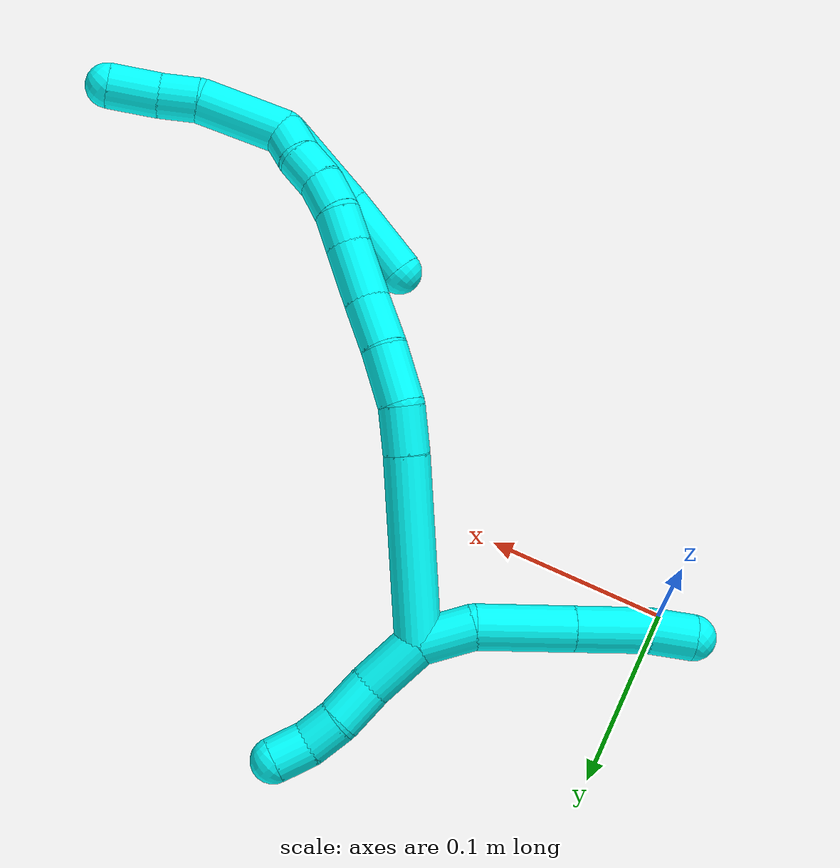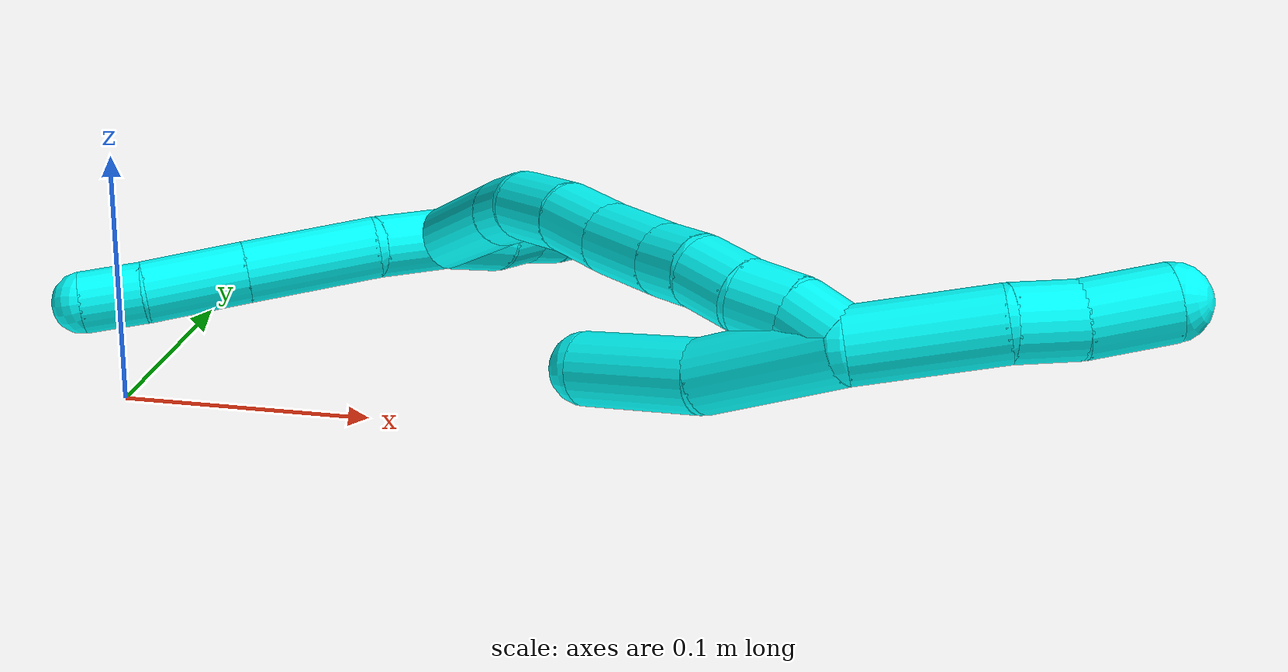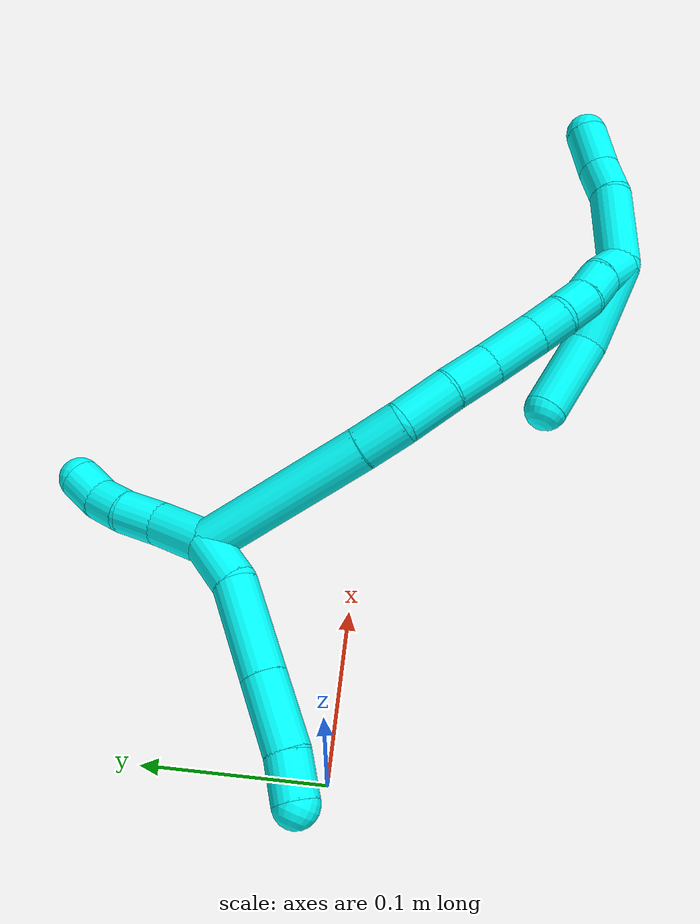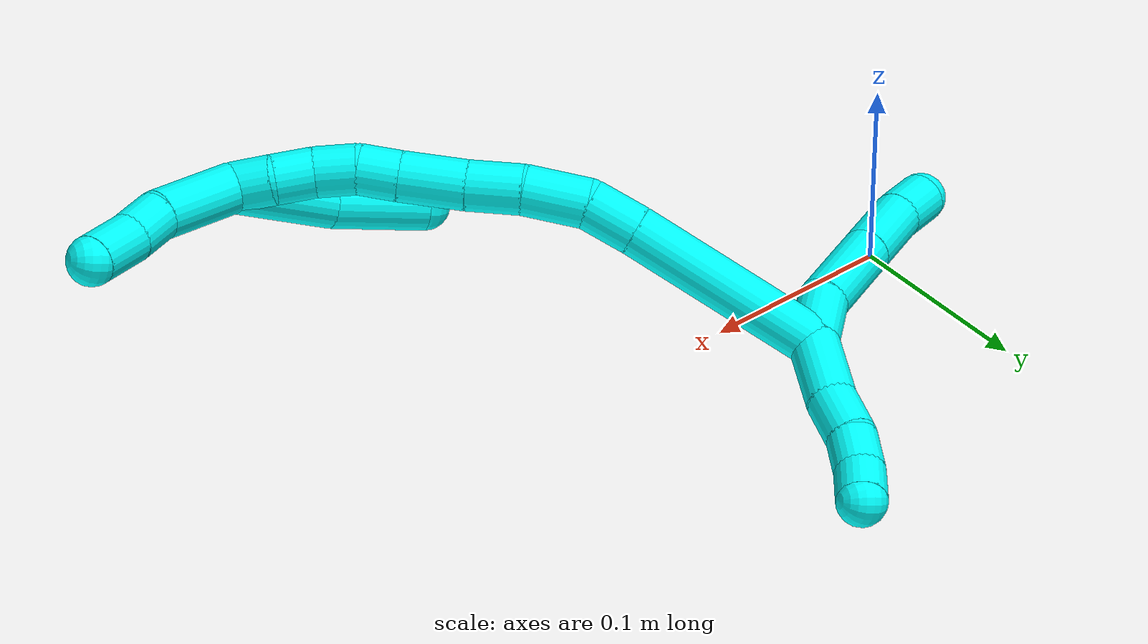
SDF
<sdf version="1.7">
 <world name="default">
  <model name="3">
   <static>0</static>
   <link name="3">
    <collision name="collision-cylinder-e_1_2_8">
     <pose>-0.011169 -0.007298 -0.007728 2.38482 -0.810144 -1.64638</pose>
     <geometry><cylinder><radius>0.0125</radius><length>0.030836</length></cylinder></geometry>
     <surface>
      <friction><ode><mu>1.16</mu><mu2>1.16</mu2><slip1>0</slip1><slip2>0</slip2></ode></friction>
      <contact><ode><kp>1e+06</kp><kd>1</kd><max_vel>0</max_vel><min_depth>0.001</min_depth></ode></contact>
     </surface>
    </collision>
    <visual name="visual-cylinder-e_1_2_8">
     <pose>-0.011169 -0.007298 -0.007728 2.38482 -0.810144 -1.64638</pose>
     <geometry><cylinder><radius>0.0125</radius><length>0.030836</length></cylinder></geometry>
     <material><ambient>0.003922 1 0.996078 1</ambient></material>
    </visual>
    <collision name="collision-cylinder-e_2_8_9">
     <pose>-0.036488 -0.025867 -0.035149 2.62173 -0.557626 -1.64436</pose>
     <geometry><cylinder><radius>0.0125</radius><length>0.053483</length></cylinder></geometry>
     <surface>
      <friction><ode><mu>1.16</mu><mu2>1.16</mu2><slip1>0</slip1><slip2>0</slip2></ode></friction>
      <contact><ode><kp>1e+06</kp><kd>1</kd><max_vel>0</max_vel><min_depth>0.001</min_depth></ode></contact>
     </surface>
    </collision>
    <visual name="visual-cylinder-e_2_8_9">
     <pose>-0.036488 -0.025867 -0.035149 2.62173 -0.557626 -1.64436</pose>
     <geometry><cylinder><radius>0.0125</radius><length>0.053483</length></cylinder></geometry>
     <material><ambient>0.003922 1 0.996078 1</ambient></material>
    </visual>
    <collision name="collision-cylinder-e_3_9_10">
     <pose>-0.061374 -0.045875 -0.069878 2.61526 -0.55306 -1.62279</pose>
     <geometry><cylinder><radius>0.0125</radius><length>0.040873</length></cylinder></geometry>
     <surface>
      <friction><ode><mu>1.16</mu><mu2>1.16</mu2><slip1>0</slip1><slip2>0</slip2></ode></friction>
      <contact><ode><kp>1e+06</kp><kd>1</kd><max_vel>0</max_vel><min_depth>0.001</min_depth></ode></contact>
     </surface>
    </collision>
    <visual name="visual-cylinder-e_3_9_10">
     <pose>-0.061374 -0.045875 -0.069878 2.61526 -0.55306 -1.62279</pose>
     <geometry><cylinder><radius>0.0125</radius><length>0.040873</length></cylinder></geometry>
     <material><ambient>0.003922 1 0.996078 1</ambient></material>
    </visual>
    <collision name="collision-cylinder-e_4_10_6">
     <pose>-0.077818 -0.058824 -0.095088 2.74903 -0.47828 -1.77327</pose>
     <geometry><cylinder><radius>0.0125</radius><length>0.024808</length></cylinder></geometry>
     <surface>
      <friction><ode><mu>1.16</mu><mu2>1.16</mu2><slip1>0</slip1><slip2>0</slip2></ode></friction>
      <contact><ode><kp>1e+06</kp><kd>1</kd><max_vel>0</max_vel><min_depth>0.001</min_depth></ode></contact>
     </surface>
    </collision>
    <visual name="visual-cylinder-e_4_10_6">
     <pose>-0.077818 -0.058824 -0.095088 2.74903 -0.47828 -1.77327</pose>
     <geometry><cylinder><radius>0.0125</radius><length>0.024808</length></cylinder></geometry>
     <material><ambient>0.003922 1 0.996078 1</ambient></material>
    </visual>
    <collision name="collision-cylinder-e_1_2_11">
     <pose>0.015317 0.007769 0.000895 -1.45616 1.09871 -0.999183</pose>
     <geometry><cylinder><radius>0.0125</radius><length>0.034396</length></cylinder></geometry>
     <surface>
      <friction><ode><mu>1.16</mu><mu2>1.16</mu2><slip1>0</slip1><slip2>0</slip2></ode></friction>
      <contact><ode><kp>1e+06</kp><kd>1</kd><max_vel>0</max_vel><min_depth>0.001</min_depth></ode></contact>
     </surface>
    </collision>
    <visual name="visual-cylinder-e_1_2_11">
     <pose>0.015317 0.007769 0.000895 -1.45616 1.09871 -0.999183</pose>
     <geometry><cylinder><radius>0.0125</radius><length>0.034396</length></cylinder></geometry>
     <material><ambient>0.003922 1 0.996078 1</ambient></material>
    </visual>
    <collision name="collision-cylinder-e_2_11_12">
     <pose>0.040538 0.022956 0.00156 -1.60164 0.927809 -0.952725</pose>
     <geometry><cylinder><radius>0.0125</radius><length>0.024751</length></cylinder></geometry>
     <surface>
      <friction><ode><mu>1.16</mu><mu2>1.16</mu2><slip1>0</slip1><slip2>0</slip2></ode></friction>
      <contact><ode><kp>1e+06</kp><kd>1</kd><max_vel>0</max_vel><min_depth>0.001</min_depth></ode></contact>
     </surface>
    </collision>
    <visual name="visual-cylinder-e_2_11_12">
     <pose>0.040538 0.022956 0.00156 -1.60164 0.927809 -0.952725</pose>
     <geometry><cylinder><radius>0.0125</radius><length>0.024751</length></cylinder></geometry>
     <material><ambient>0.003922 1 0.996078 1</ambient></material>
    </visual>
    <collision name="collision-cylinder-e_3_12_13">
     <pose>0.059316 0.035037 0.002615 -1.30235 1.07162 -0.849814</pose>
     <geometry><cylinder><radius>0.0125</radius><length>0.020215</length></cylinder></geometry>
     <surface>
      <friction><ode><mu>1.16</mu><mu2>1.16</mu2><slip1>0</slip1><slip2>0</slip2></ode></friction>
      <contact><ode><kp>1e+06</kp><kd>1</kd><max_vel>0</max_vel><min_depth>0.001</min_depth></ode></contact>
     </surface>
    </collision>
    <visual name="visual-cylinder-e_3_12_13">
     <pose>0.059316 0.035037 0.002615 -1.30235 1.07162 -0.849814</pose>
     <geometry><cylinder><radius>0.0125</radius><length>0.020215</length></cylinder></geometry>
     <material><ambient>0.003922 1 0.996078 1</ambient></material>
    </visual>
    <collision name="collision-cylinder-e_4_13_5">
     <pose>0.075848 0.045604 0.007507 -1.02191 0.836101 -0.48816</pose>
     <geometry><cylinder><radius>0.0125</radius><length>0.020638</length></cylinder></geometry>
     <surface>
      <friction><ode><mu>1.16</mu><mu2>1.16</mu2><slip1>0</slip1><slip2>0</slip2></ode></friction>
      <contact><ode><kp>1e+06</kp><kd>1</kd><max_vel>0</max_vel><min_depth>0.001</min_depth></ode></contact>
     </surface>
    </collision>
    <visual name="visual-cylinder-e_4_13_5">
     <pose>0.075848 0.045604 0.007507 -1.02191 0.836101 -0.48816</pose>
     <geometry><cylinder><radius>0.0125</radius><length>0.020638</length></cylinder></geometry>
     <material><ambient>0.003922 1 0.996078 1</ambient></material>
    </visual>
    <collision name="collision-cylinder-e_1_2_14">
     <pose>-0.029683 -0.015696 0.037241 0.398878 -0.633488 -0.132312</pose>
     <geometry><cylinder><radius>0.0125</radius><length>0.100287</length></cylinder></geometry>
     <surface>
      <friction><ode><mu>1.16</mu><mu2>1.16</mu2><slip1>0</slip1><slip2>0</slip2></ode></friction>
      <contact><ode><kp>1e+06</kp><kd>1</kd><max_vel>0</max_vel><min_depth>0.001</min_depth></ode></contact>
     </surface>
    </collision>
    <visual name="visual-cylinder-e_1_2_14">
     <pose>-0.029683 -0.015696 0.037241 0.398878 -0.633488 -0.132312</pose>
     <geometry><cylinder><radius>0.0125</radius><length>0.100287</length></cylinder></geometry>
     <material><ambient>0.003922 1 0.996078 1</ambient></material>
    </visual>
    <collision name="collision-cylinder-e_2_14_15">
     <pose>-0.066567 -0.035515 0.084528 0.38947 -0.585611 -0.118781</pose>
     <geometry><cylinder><radius>0.0125</radius><length>0.026057</length></cylinder></geometry>
     <surface>
      <friction><ode><mu>1.16</mu><mu2>1.16</mu2><slip1>0</slip1><slip2>0</slip2></ode></friction>
      <contact><ode><kp>1e+06</kp><kd>1</kd><max_vel>0</max_vel><min_depth>0.001</min_depth></ode></contact>
     </surface>
    </collision>
    <visual name="visual-cylinder-e_2_14_15">
     <pose>-0.066567 -0.035515 0.084528 0.38947 -0.585611 -0.118781</pose>
     <geometry><cylinder><radius>0.0125</radius><length>0.026057</length></cylinder></geometry>
     <material><ambient>0.003922 1 0.996078 1</ambient></material>
    </visual>
    <collision name="collision-cylinder-e_3_15_16">
     <pose>-0.078351 -0.046536 0.108148 0.470153 -0.292359 -0.070495</pose>
     <geometry><cylinder><radius>0.0125</radius><length>0.031805</length></cylinder></geometry>
     <surface>
      <friction><ode><mu>1.16</mu><mu2>1.16</mu2><slip1>0</slip1><slip2>0</slip2></ode></friction>
      <contact><ode><kp>1e+06</kp><kd>1</kd><max_vel>0</max_vel><min_depth>0.001</min_depth></ode></contact>
     </surface>
    </collision>
    <visual name="visual-cylinder-e_3_15_16">
     <pose>-0.078351 -0.046536 0.108148 0.470153 -0.292359 -0.070495</pose>
     <geometry><cylinder><radius>0.0125</radius><length>0.031805</length></cylinder></geometry>
     <material><ambient>0.003922 1 0.996078 1</ambient></material>
    </visual>
    <collision name="collision-cylinder-e_4_16_17">
     <pose>-0.085221 -0.060485 0.133222 0.549986 -0.167894 -0.047473</pose>
     <geometry><cylinder><radius>0.0125</radius><length>0.02736</length></cylinder></geometry>
     <surface>
      <friction><ode><mu>1.16</mu><mu2>1.16</mu2><slip1>0</slip1><slip2>0</slip2></ode></friction>
      <contact><ode><kp>1e+06</kp><kd>1</kd><max_vel>0</max_vel><min_depth>0.001</min_depth></ode></contact>
     </surface>
    </collision>
    <visual name="visual-cylinder-e_4_16_17">
     <pose>-0.085221 -0.060485 0.133222 0.549986 -0.167894 -0.047473</pose>
     <geometry><cylinder><radius>0.0125</radius><length>0.02736</length></cylinder></geometry>
     <material><ambient>0.003922 1 0.996078 1</ambient></material>
    </visual>
    <collision name="collision-cylinder-e_5_17_18">
     <pose>-0.091094 -0.075351 0.158654 0.511275 -0.220906 -0.057955</pose>
     <geometry><cylinder><radius>0.0125</radius><length>0.032747</length></cylinder></geometry>
     <surface>
      <friction><ode><mu>1.16</mu><mu2>1.16</mu2><slip1>0</slip1><slip2>0</slip2></ode></friction>
      <contact><ode><kp>1e+06</kp><kd>1</kd><max_vel>0</max_vel><min_depth>0.001</min_depth></ode></contact>
     </surface>
    </collision>
    <visual name="visual-cylinder-e_5_17_18">
     <pose>-0.091094 -0.075351 0.158654 0.511275 -0.220906 -0.057955</pose>
     <geometry><cylinder><radius>0.0125</radius><length>0.032747</length></cylinder></geometry>
     <material><ambient>0.003922 1 0.996078 1</ambient></material>
    </visual>
    <collision name="collision-cylinder-e_6_18_19">
     <pose>-0.09719 -0.087683 0.181324 0.476925 -0.249641 -0.060983</pose>
     <geometry><cylinder><radius>0.0125</radius><length>0.0203</length></cylinder></geometry>
     <surface>
      <friction><ode><mu>1.16</mu><mu2>1.16</mu2><slip1>0</slip1><slip2>0</slip2></ode></friction>
      <contact><ode><kp>1e+06</kp><kd>1</kd><max_vel>0</max_vel><min_depth>0.001</min_depth></ode></contact>
     </surface>
    </collision>
    <visual name="visual-cylinder-e_6_18_19">
     <pose>-0.09719 -0.087683 0.181324 0.476925 -0.249641 -0.060983</pose>
     <geometry><cylinder><radius>0.0125</radius><length>0.0203</length></cylinder></geometry>
     <material><ambient>0.003922 1 0.996078 1</ambient></material>
    </visual>
    <collision name="collision-cylinder-e_7_19_20">
     <pose>-0.099864 -0.097707 0.199088 0.547999 -0.015765 -0.004431</pose>
     <geometry><cylinder><radius>0.0125</radius><length>0.021151</length></cylinder></geometry>
     <surface>
      <friction><ode><mu>1.16</mu><mu2>1.16</mu2><slip1>0</slip1><slip2>0</slip2></ode></friction>
      <contact><ode><kp>1e+06</kp><kd>1</kd><max_vel>0</max_vel><min_depth>0.001</min_depth></ode></contact>
     </surface>
    </collision>
    <visual name="visual-cylinder-e_7_19_20">
     <pose>-0.099864 -0.097707 0.199088 0.547999 -0.015765 -0.004431</pose>
     <geometry><cylinder><radius>0.0125</radius><length>0.021151</length></cylinder></geometry>
     <material><ambient>0.003922 1 0.996078 1</ambient></material>
    </visual>
    <collision name="collision-cylinder-e_8_20_21">
     <pose>-0.098793 -0.106905 0.217359 0.379748 0.123661 0.023796</pose>
     <geometry><cylinder><radius>0.0125</radius><length>0.020062</length></cylinder></geometry>
     <surface>
      <friction><ode><mu>1.16</mu><mu2>1.16</mu2><slip1>0</slip1><slip2>0</slip2></ode></friction>
      <contact><ode><kp>1e+06</kp><kd>1</kd><max_vel>0</max_vel><min_depth>0.001</min_depth></ode></contact>
     </surface>
    </collision>
    <visual name="visual-cylinder-e_8_20_21">
     <pose>-0.098793 -0.106905 0.217359 0.379748 0.123661 0.023796</pose>
     <geometry><cylinder><radius>0.0125</radius><length>0.020062</length></cylinder></geometry>
     <material><ambient>0.003922 1 0.996078 1</ambient></material>
    </visual>
    <collision name="collision-cylinder-e_9_21_1">
     <pose>-0.096652 -0.1164 0.234838 0.614058 0.08947 0.028384</pose>
     <geometry><cylinder><radius>0.0125</radius><length>0.02023</length></cylinder></geometry>
     <surface>
      <friction><ode><mu>1.16</mu><mu2>1.16</mu2><slip1>0</slip1><slip2>0</slip2></ode></friction>
      <contact><ode><kp>1e+06</kp><kd>1</kd><max_vel>0</max_vel><min_depth>0.001</min_depth></ode></contact>
     </surface>
    </collision>
    <visual name="visual-cylinder-e_9_21_1">
     <pose>-0.096652 -0.1164 0.234838 0.614058 0.08947 0.028384</pose>
     <geometry><cylinder><radius>0.0125</radius><length>0.02023</length></cylinder></geometry>
     <material><ambient>0.003922 1 0.996078 1</ambient></material>
    </visual>
    <collision name="collision-cylinder-e_1_1_22">
     <pose>-0.087569 -0.116331 0.265523 -0.255893 0.338889 -0.044013</pose>
     <geometry><cylinder><radius>0.0125</radius><length>0.049212</length></cylinder></geometry>
     <surface>
      <friction><ode><mu>1.16</mu><mu2>1.16</mu2><slip1>0</slip1><slip2>0</slip2></ode></friction>
      <contact><ode><kp>1e+06</kp><kd>1</kd><max_vel>0</max_vel><min_depth>0.001</min_depth></ode></contact>
     </surface>
    </collision>
    <visual name="visual-cylinder-e_1_1_22">
     <pose>-0.087569 -0.116331 0.265523 -0.255893 0.338889 -0.044013</pose>
     <geometry><cylinder><radius>0.0125</radius><length>0.049212</length></cylinder></geometry>
     <material><ambient>0.003922 1 0.996078 1</ambient></material>
    </visual>
    <collision name="collision-cylinder-e_2_22_23">
     <pose>-0.07334 -0.107569 0.29671 -0.319325 0.5815 -0.096297</pose>
     <geometry><cylinder><radius>0.0125</radius><length>0.022024</length></cylinder></geometry>
     <surface>
      <friction><ode><mu>1.16</mu><mu2>1.16</mu2><slip1>0</slip1><slip2>0</slip2></ode></friction>
      <contact><ode><kp>1e+06</kp><kd>1</kd><max_vel>0</max_vel><min_depth>0.001</min_depth></ode></contact>
     </surface>
    </collision>
    <visual name="visual-cylinder-e_2_22_23">
     <pose>-0.07334 -0.107569 0.29671 -0.319325 0.5815 -0.096297</pose>
     <geometry><cylinder><radius>0.0125</radius><length>0.022024</length></cylinder></geometry>
     <material><ambient>0.003922 1 0.996078 1</ambient></material>
    </visual>
    <collision name="collision-cylinder-e_3_23_4">
     <pose>-0.060975 -0.099589 0.317323 -0.404973 0.454694 -0.09492</pose>
     <geometry><cylinder><radius>0.0125</radius><length>0.028765</length></cylinder></geometry>
     <surface>
      <friction><ode><mu>1.16</mu><mu2>1.16</mu2><slip1>0</slip1><slip2>0</slip2></ode></friction>
      <contact><ode><kp>1e+06</kp><kd>1</kd><max_vel>0</max_vel><min_depth>0.001</min_depth></ode></contact>
     </surface>
    </collision>
    <visual name="visual-cylinder-e_3_23_4">
     <pose>-0.060975 -0.099589 0.317323 -0.404973 0.454694 -0.09492</pose>
     <geometry><cylinder><radius>0.0125</radius><length>0.028765</length></cylinder></geometry>
     <material><ambient>0.003922 1 0.996078 1</ambient></material>
    </visual>
    <collision name="collision-cylinder-e_1_1_24">
     <pose>-0.092546 -0.123476 0.216791 3.09327 0.121107 2.38304</pose>
     <geometry><cylinder><radius>0.0125</radius><length>0.053013</length></cylinder></geometry>
     <surface>
      <friction><ode><mu>1.16</mu><mu2>1.16</mu2><slip1>0</slip1><slip2>0</slip2></ode></friction>
      <contact><ode><kp>1e+06</kp><kd>1</kd><max_vel>0</max_vel><min_depth>0.001</min_depth></ode></contact>
     </surface>
    </collision>
    <visual name="visual-cylinder-e_1_1_24">
     <pose>-0.092546 -0.123476 0.216791 3.09327 0.121107 2.38304</pose>
     <geometry><cylinder><radius>0.0125</radius><length>0.053013</length></cylinder></geometry>
     <material><ambient>0.003922 1 0.996078 1</ambient></material>
    </visual>
    <collision name="collision-cylinder-e_2_24_3">
     <pose>-0.088302 -0.120741 0.167383 -2.97008 0.044359 -0.505076</pose>
     <geometry><cylinder><radius>0.0125</radius><length>0.046987</length></cylinder></geometry>
     <surface>
      <friction><ode><mu>1.16</mu><mu2>1.16</mu2><slip1>0</slip1><slip2>0</slip2></ode></friction>
      <contact><ode><kp>1e+06</kp><kd>1</kd><max_vel>0</max_vel><min_depth>0.001</min_depth></ode></contact>
     </surface>
    </collision>
    <visual name="visual-cylinder-e_2_24_3">
     <pose>-0.088302 -0.120741 0.167383 -2.97008 0.044359 -0.505076</pose>
     <geometry><cylinder><radius>0.0125</radius><length>0.046987</length></cylinder></geometry>
     <material><ambient>0.003922 1 0.996078 1</ambient></material>
    </visual>
    <collision name="collision-sphere-3">
     <pose>-0.08726 -0.116736 0.144257 0 -0 0</pose>
     <geometry><sphere><radius>0.0125</radius></sphere></geometry>
     <surface>
      <friction><ode><mu>1.16</mu><mu2>1.16</mu2><slip1>0</slip1><slip2>0</slip2></ode></friction>
      <contact><ode><kp>1e+06</kp><kd>1</kd><max_vel>0</max_vel><min_depth>0.001</min_depth></ode></contact>
     </surface>
    </collision>
    <visual name="visual-sphere-3">
     <pose>-0.08726 -0.116736 0.144257 0 -0 0</pose>
     <geometry><sphere><radius>0.0125</radius></sphere></geometry>
     <material><ambient>0.003922 1 0.996078 1</ambient></material>
    </visual>
    <collision name="collision-sphere-24">
     <pose>-0.089344 -0.124747 0.190509 0 -0 0</pose>
     <geometry><sphere><radius>0.0125</radius></sphere></geometry>
     <surface>
      <friction><ode><mu>1.16</mu><mu2>1.16</mu2><slip1>0</slip1><slip2>0</slip2></ode></friction>
      <contact><ode><kp>1e+06</kp><kd>1</kd><max_vel>0</max_vel><min_depth>0.001</min_depth></ode></contact>
     </surface>
    </collision>
    <visual name="visual-sphere-24">
     <pose>-0.089344 -0.124747 0.190509 0 -0 0</pose>
     <geometry><sphere><radius>0.0125</radius></sphere></geometry>
     <material><ambient>0.003922 1 0.996078 1</ambient></material>
    </visual>
    <collision name="collision-sphere-4">
     <pose>-0.054659 -0.094499 0.329199 0 -0 0</pose>
     <geometry><sphere><radius>0.0125</radius></sphere></geometry>
     <surface>
      <friction><ode><mu>1.16</mu><mu2>1.16</mu2><slip1>0</slip1><slip2>0</slip2></ode></friction>
      <contact><ode><kp>1e+06</kp><kd>1</kd><max_vel>0</max_vel><min_depth>0.001</min_depth></ode></contact>
     </surface>
    </collision>
    <visual name="visual-sphere-4">
     <pose>-0.054659 -0.094499 0.329199 0 -0 0</pose>
     <geometry><sphere><radius>0.0125</radius></sphere></geometry>
     <material><ambient>0.003922 1 0.996078 1</ambient></material>
    </visual>
    <collision name="collision-sphere-23">
     <pose>-0.067292 -0.10468 0.305447 0 -0 0</pose>
     <geometry><sphere><radius>0.0125</radius></sphere></geometry>
     <surface>
      <friction><ode><mu>1.16</mu><mu2>1.16</mu2><slip1>0</slip1><slip2>0</slip2></ode></friction>
      <contact><ode><kp>1e+06</kp><kd>1</kd><max_vel>0</max_vel><min_depth>0.001</min_depth></ode></contact>
     </surface>
    </collision>
    <visual name="visual-sphere-23">
     <pose>-0.067292 -0.10468 0.305447 0 -0 0</pose>
     <geometry><sphere><radius>0.0125</radius></sphere></geometry>
     <material><ambient>0.003922 1 0.996078 1</ambient></material>
    </visual>
    <collision name="collision-sphere-22">
     <pose>-0.079389 -0.110458 0.287973 0 -0 0</pose>
     <geometry><sphere><radius>0.0125</radius></sphere></geometry>
     <surface>
      <friction><ode><mu>1.16</mu><mu2>1.16</mu2><slip1>0</slip1><slip2>0</slip2></ode></friction>
      <contact><ode><kp>1e+06</kp><kd>1</kd><max_vel>0</max_vel><min_depth>0.001</min_depth></ode></contact>
     </surface>
    </collision>
    <visual name="visual-sphere-22">
     <pose>-0.079389 -0.110458 0.287973 0 -0 0</pose>
     <geometry><sphere><radius>0.0125</radius></sphere></geometry>
     <material><ambient>0.003922 1 0.996078 1</ambient></material>
    </visual>
    <collision name="collision-sphere-1">
     <pose>-0.095749 -0.122205 0.243072 0 -0 0</pose>
     <geometry><sphere><radius>0.0125</radius></sphere></geometry>
     <surface>
      <friction><ode><mu>1.16</mu><mu2>1.16</mu2><slip1>0</slip1><slip2>0</slip2></ode></friction>
      <contact><ode><kp>1e+06</kp><kd>1</kd><max_vel>0</max_vel><min_depth>0.001</min_depth></ode></contact>
     </surface>
    </collision>
    <visual name="visual-sphere-1">
     <pose>-0.095749 -0.122205 0.243072 0 -0 0</pose>
     <geometry><sphere><radius>0.0125</radius></sphere></geometry>
     <material><ambient>0.003922 1 0.996078 1</ambient></material>
    </visual>
    <collision name="collision-sphere-21">
     <pose>-0.097556 -0.110595 0.226604 0 -0 0</pose>
     <geometry><sphere><radius>0.0125</radius></sphere></geometry>
     <surface>
      <friction><ode><mu>1.16</mu><mu2>1.16</mu2><slip1>0</slip1><slip2>0</slip2></ode></friction>
      <contact><ode><kp>1e+06</kp><kd>1</kd><max_vel>0</max_vel><min_depth>0.001</min_depth></ode></contact>
     </surface>
    </collision>
    <visual name="visual-sphere-21">
     <pose>-0.097556 -0.110595 0.226604 0 -0 0</pose>
     <geometry><sphere><radius>0.0125</radius></sphere></geometry>
     <material><ambient>0.003922 1 0.996078 1</ambient></material>
    </visual>
    <collision name="collision-sphere-11">
     <pose>0.030634 0.015539 0.001789 0 -0 0</pose>
     <geometry><sphere><radius>0.0125</radius></sphere></geometry>
     <surface>
      <friction><ode><mu>1.16</mu><mu2>1.16</mu2><slip1>0</slip1><slip2>0</slip2></ode></friction>
      <contact><ode><kp>1e+06</kp><kd>1</kd><max_vel>0</max_vel><min_depth>0.001</min_depth></ode></contact>
     </surface>
    </collision>
    <visual name="visual-sphere-11">
     <pose>0.030634 0.015539 0.001789 0 -0 0</pose>
     <geometry><sphere><radius>0.0125</radius></sphere></geometry>
     <material><ambient>0.003922 1 0.996078 1</ambient></material>
    </visual>
    <collision name="collision-sphere-6">
     <pose>-0.083527 -0.063037 -0.105263 0 -0 0</pose>
     <geometry><sphere><radius>0.0125</radius></sphere></geometry>
     <surface>
      <friction><ode><mu>1.16</mu><mu2>1.16</mu2><slip1>0</slip1><slip2>0</slip2></ode></friction>
      <contact><ode><kp>1e+06</kp><kd>1</kd><max_vel>0</max_vel><min_depth>0.001</min_depth></ode></contact>
     </surface>
    </collision>
    <visual name="visual-sphere-6">
     <pose>-0.083527 -0.063037 -0.105263 0 -0 0</pose>
     <geometry><sphere><radius>0.0125</radius></sphere></geometry>
     <material><ambient>0.003922 1 0.996078 1</ambient></material>
    </visual>
    <collision name="collision-sphere-10">
     <pose>-0.072109 -0.054611 -0.084914 0 -0 0</pose>
     <geometry><sphere><radius>0.0125</radius></sphere></geometry>
     <surface>
      <friction><ode><mu>1.16</mu><mu2>1.16</mu2><slip1>0</slip1><slip2>0</slip2></ode></friction>
      <contact><ode><kp>1e+06</kp><kd>1</kd><max_vel>0</max_vel><min_depth>0.001</min_depth></ode></contact>
     </surface>
    </collision>
    <visual name="visual-sphere-10">
     <pose>-0.072109 -0.054611 -0.084914 0 -0 0</pose>
     <geometry><sphere><radius>0.0125</radius></sphere></geometry>
     <material><ambient>0.003922 1 0.996078 1</ambient></material>
    </visual>
    <collision name="collision-sphere-9">
     <pose>-0.050639 -0.037139 -0.054841 0 -0 0</pose>
     <geometry><sphere><radius>0.0125</radius></sphere></geometry>
     <surface>
      <friction><ode><mu>1.16</mu><mu2>1.16</mu2><slip1>0</slip1><slip2>0</slip2></ode></friction>
      <contact><ode><kp>1e+06</kp><kd>1</kd><max_vel>0</max_vel><min_depth>0.001</min_depth></ode></contact>
     </surface>
    </collision>
    <visual name="visual-sphere-9">
     <pose>-0.050639 -0.037139 -0.054841 0 -0 0</pose>
     <geometry><sphere><radius>0.0125</radius></sphere></geometry>
     <material><ambient>0.003922 1 0.996078 1</ambient></material>
    </visual>
    <collision name="collision-sphere-2">
     <geometry><sphere><radius>0.0125</radius></sphere></geometry>
     <surface>
      <friction><ode><mu>1.16</mu><mu2>1.16</mu2><slip1>0</slip1><slip2>0</slip2></ode></friction>
      <contact><ode><kp>1e+06</kp><kd>1</kd><max_vel>0</max_vel><min_depth>0.001</min_depth></ode></contact>
     </surface>
    </collision>
    <visual name="visual-sphere-2">
     <geometry><sphere><radius>0.0125</radius></sphere></geometry>
     <material><ambient>0.003922 1 0.996078 1</ambient></material>
    </visual>
    <collision name="collision-sphere-19">
     <pose>-0.099697 -0.092198 0.190062 0 -0 0</pose>
     <geometry><sphere><radius>0.0125</radius></sphere></geometry>
     <surface>
      <friction><ode><mu>1.16</mu><mu2>1.16</mu2><slip1>0</slip1><slip2>0</slip2></ode></friction>
      <contact><ode><kp>1e+06</kp><kd>1</kd><max_vel>0</max_vel><min_depth>0.001</min_depth></ode></contact>
     </surface>
    </collision>
    <visual name="visual-sphere-19">
     <pose>-0.099697 -0.092198 0.190062 0 -0 0</pose>
     <geometry><sphere><radius>0.0125</radius></sphere></geometry>
     <material><ambient>0.003922 1 0.996078 1</ambient></material>
    </visual>
    <collision name="collision-sphere-8">
     <pose>-0.022337 -0.014595 -0.015456 0 -0 0</pose>
     <geometry><sphere><radius>0.0125</radius></sphere></geometry>
     <surface>
      <friction><ode><mu>1.16</mu><mu2>1.16</mu2><slip1>0</slip1><slip2>0</slip2></ode></friction>
      <contact><ode><kp>1e+06</kp><kd>1</kd><max_vel>0</max_vel><min_depth>0.001</min_depth></ode></contact>
     </surface>
    </collision>
    <visual name="visual-sphere-8">
     <pose>-0.022337 -0.014595 -0.015456 0 -0 0</pose>
     <geometry><sphere><radius>0.0125</radius></sphere></geometry>
     <material><ambient>0.003922 1 0.996078 1</ambient></material>
    </visual>
    <collision name="collision-sphere-12">
     <pose>0.050442 0.030372 0.001331 0 -0 0</pose>
     <geometry><sphere><radius>0.0125</radius></sphere></geometry>
     <surface>
      <friction><ode><mu>1.16</mu><mu2>1.16</mu2><slip1>0</slip1><slip2>0</slip2></ode></friction>
      <contact><ode><kp>1e+06</kp><kd>1</kd><max_vel>0</max_vel><min_depth>0.001</min_depth></ode></contact>
     </surface>
    </collision>
    <visual name="visual-sphere-12">
     <pose>0.050442 0.030372 0.001331 0 -0 0</pose>
     <geometry><sphere><radius>0.0125</radius></sphere></geometry>
     <material><ambient>0.003922 1 0.996078 1</ambient></material>
    </visual>
    <collision name="collision-sphere-13">
     <pose>0.068191 0.039703 0.003898 0 -0 0</pose>
     <geometry><sphere><radius>0.0125</radius></sphere></geometry>
     <surface>
      <friction><ode><mu>1.16</mu><mu2>1.16</mu2><slip1>0</slip1><slip2>0</slip2></ode></friction>
      <contact><ode><kp>1e+06</kp><kd>1</kd><max_vel>0</max_vel><min_depth>0.001</min_depth></ode></contact>
     </surface>
    </collision>
    <visual name="visual-sphere-13">
     <pose>0.068191 0.039703 0.003898 0 -0 0</pose>
     <geometry><sphere><radius>0.0125</radius></sphere></geometry>
     <material><ambient>0.003922 1 0.996078 1</ambient></material>
    </visual>
    <collision name="collision-sphere-5">
     <pose>0.083505 0.051505 0.011116 0 -0 0</pose>
     <geometry><sphere><radius>0.0125</radius></sphere></geometry>
     <surface>
      <friction><ode><mu>1.16</mu><mu2>1.16</mu2><slip1>0</slip1><slip2>0</slip2></ode></friction>
      <contact><ode><kp>1e+06</kp><kd>1</kd><max_vel>0</max_vel><min_depth>0.001</min_depth></ode></contact>
     </surface>
    </collision>
    <visual name="visual-sphere-5">
     <pose>0.083505 0.051505 0.011116 0 -0 0</pose>
     <geometry><sphere><radius>0.0125</radius></sphere></geometry>
     <material><ambient>0.003922 1 0.996078 1</ambient></material>
    </visual>
    <collision name="collision-sphere-14">
     <pose>-0.059366 -0.031392 0.074483 0 -0 0</pose>
     <geometry><sphere><radius>0.0125</radius></sphere></geometry>
     <surface>
      <friction><ode><mu>1.16</mu><mu2>1.16</mu2><slip1>0</slip1><slip2>0</slip2></ode></friction>
      <contact><ode><kp>1e+06</kp><kd>1</kd><max_vel>0</max_vel><min_depth>0.001</min_depth></ode></contact>
     </surface>
    </collision>
    <visual name="visual-sphere-14">
     <pose>-0.059366 -0.031392 0.074483 0 -0 0</pose>
     <geometry><sphere><radius>0.0125</radius></sphere></geometry>
     <material><ambient>0.003922 1 0.996078 1</ambient></material>
    </visual>
    <collision name="collision-sphere-15">
     <pose>-0.073768 -0.039638 0.094572 0 -0 0</pose>
     <geometry><sphere><radius>0.0125</radius></sphere></geometry>
     <surface>
      <friction><ode><mu>1.16</mu><mu2>1.16</mu2><slip1>0</slip1><slip2>0</slip2></ode></friction>
      <contact><ode><kp>1e+06</kp><kd>1</kd><max_vel>0</max_vel><min_depth>0.001</min_depth></ode></contact>
     </surface>
    </collision>
    <visual name="visual-sphere-15">
     <pose>-0.073768 -0.039638 0.094572 0 -0 0</pose>
     <geometry><sphere><radius>0.0125</radius></sphere></geometry>
     <material><ambient>0.003922 1 0.996078 1</ambient></material>
    </visual>
    <collision name="collision-sphere-16">
     <pose>-0.082935 -0.053435 0.121723 0 -0 0</pose>
     <geometry><sphere><radius>0.0125</radius></sphere></geometry>
     <surface>
      <friction><ode><mu>1.16</mu><mu2>1.16</mu2><slip1>0</slip1><slip2>0</slip2></ode></friction>
      <contact><ode><kp>1e+06</kp><kd>1</kd><max_vel>0</max_vel><min_depth>0.001</min_depth></ode></contact>
     </surface>
    </collision>
    <visual name="visual-sphere-16">
     <pose>-0.082935 -0.053435 0.121723 0 -0 0</pose>
     <geometry><sphere><radius>0.0125</radius></sphere></geometry>
     <material><ambient>0.003922 1 0.996078 1</ambient></material>
    </visual>
    <collision name="collision-sphere-17">
     <pose>-0.087507 -0.067534 0.144721 0 -0 0</pose>
     <geometry><sphere><radius>0.0125</radius></sphere></geometry>
     <surface>
      <friction><ode><mu>1.16</mu><mu2>1.16</mu2><slip1>0</slip1><slip2>0</slip2></ode></friction>
      <contact><ode><kp>1e+06</kp><kd>1</kd><max_vel>0</max_vel><min_depth>0.001</min_depth></ode></contact>
     </surface>
    </collision>
    <visual name="visual-sphere-17">
     <pose>-0.087507 -0.067534 0.144721 0 -0 0</pose>
     <geometry><sphere><radius>0.0125</radius></sphere></geometry>
     <material><ambient>0.003922 1 0.996078 1</ambient></material>
    </visual>
    <collision name="collision-sphere-18">
     <pose>-0.094682 -0.083168 0.172587 0 -0 0</pose>
     <geometry><sphere><radius>0.0125</radius></sphere></geometry>
     <surface>
      <friction><ode><mu>1.16</mu><mu2>1.16</mu2><slip1>0</slip1><slip2>0</slip2></ode></friction>
      <contact><ode><kp>1e+06</kp><kd>1</kd><max_vel>0</max_vel><min_depth>0.001</min_depth></ode></contact>
     </surface>
    </collision>
    <visual name="visual-sphere-18">
     <pose>-0.094682 -0.083168 0.172587 0 -0 0</pose>
     <geometry><sphere><radius>0.0125</radius></sphere></geometry>
     <material><ambient>0.003922 1 0.996078 1</ambient></material>
    </visual>
    <collision name="collision-sphere-20">
     <pose>-0.100031 -0.103216 0.208114 0 -0 0</pose>
     <geometry><sphere><radius>0.0125</radius></sphere></geometry>
     <surface>
      <friction><ode><mu>1.16</mu><mu2>1.16</mu2><slip1>0</slip1><slip2>0</slip2></ode></friction>
      <contact><ode><kp>1e+06</kp><kd>1</kd><max_vel>0</max_vel><min_depth>0.001</min_depth></ode></contact>
     </surface>
    </collision>
    <visual name="visual-sphere-20">
     <pose>-0.100031 -0.103216 0.208114 0 -0 0</pose>
     <geometry><sphere><radius>0.0125</radius></sphere></geometry>
     <material><ambient>0.003922 1 0.996078 1</ambient></material>
    </visual>
    <inertial>
     <pose>-0.052953 -0.056112 0.101668 0 -0 0</pose>
     <mass>0.75</mass>
     <inertia><ixx>6.7e-05</ixx><ixy>0</ixy><ixz>0</ixz><iyy>9.4e-05</iyy><iyz>0</iyz><izz>0.000103</izz></inertia>
    </inertial>
   </link>
   <pose>0.110535 0.079974 0.047553 1.17889 0.763283 0.992807</pose>
  </model>
 </world>
</sdf>
